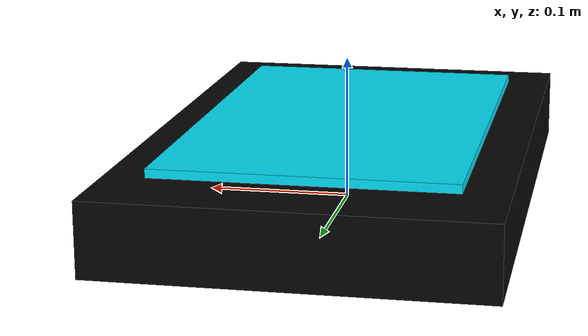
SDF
<?xml version="1.0" ?>
<sdf version="1.6">
  <model name="a1an_assistive_phone">
    <static>true</static>
    <link name="phone_link">
      <inertial>
        <mass>0.18</mass>
        <inertia>
          <ixx>0.001</ixx>
          <iyy>0.001</iyy>
          <izz>0.001</izz>
        </inertia>
      </inertial>
      <collision name="collision">
        <pose>0 0 0.025 0 0 0</pose>
        <geometry>
          <box>
            <size>0.26 0.42 0.05</size>
          </box>
        </geometry>
      </collision>
      <visual name="body_visual">
        <pose>0 0 0.025 0 0 0</pose>
        <geometry>
          <box>
            <size>0.26 0.42 0.05</size>
          </box>
        </geometry>
        <material>
          <ambient>0.01 0.01 0.01 1</ambient>
          <diffuse>0.02 0.02 0.02 1</diffuse>
          <specular>0.4 0.4 0.4 1</specular>
        </material>
      </visual>
      <visual name="screen_visual">
        <pose>0 0 0.055 0 0 0</pose>
        <geometry>
          <box>
            <size>0.20 0.32 0.006</size>
          </box>
        </geometry>
        <material>
          <ambient>0.0 0.75 0.85 1</ambient>
          <diffuse>0.0 0.9 1.0 1</diffuse>
          <emissive>0.0 0.15 0.18 1</emissive>
        </material>
      </visual>
    </link>
  </model>
</sdf>
